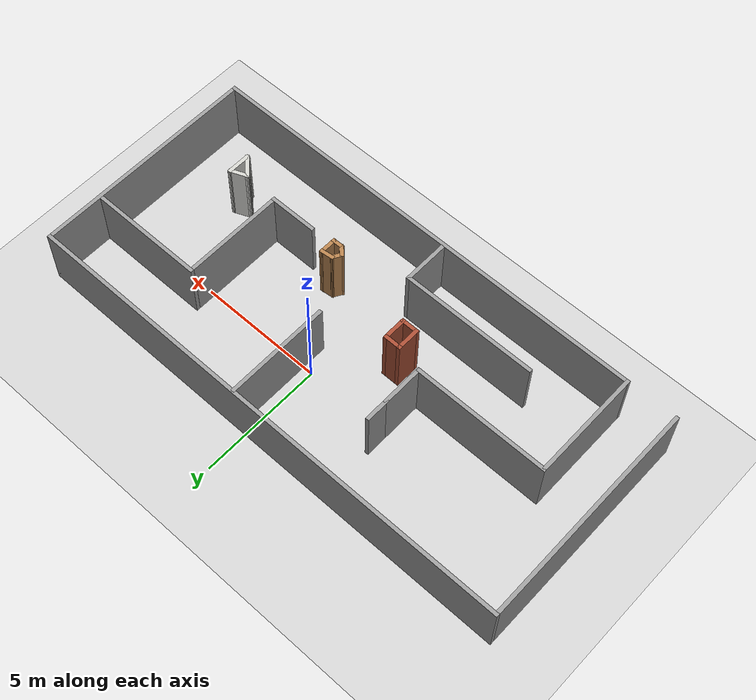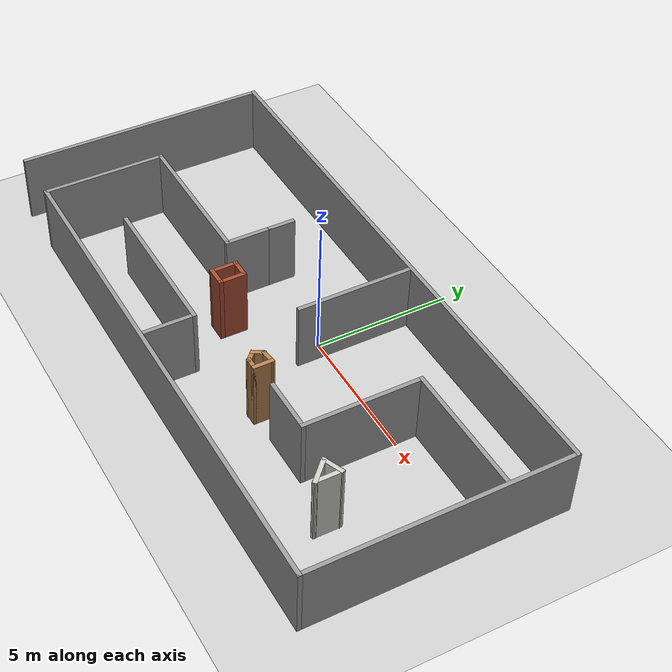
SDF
<sdf version="1.6">
 <world name="default">
  <plugin name="hello" filename="libhello.so"/>
  <light name="sun" type="directional">
   <pose>0 0 10 0 -0 0</pose>
   <diffuse>0.8 0.8 0.8 1</diffuse>
   <specular>0.2 0.2 0.2 1</specular>
   <attenuation>
    <range>1000</range>
    <constant>0.9</constant>
    <linear>0.01</linear>
    <quadratic>0.001</quadratic>
   </attenuation>
   <direction>-0.5 0.1 -0.9</direction>
  </light>
  <model name="ground_plane">
   <static>1</static>
   <link name="link">
    <collision name="collision">
     <geometry><plane><normal>0 0 1</normal><size>100 100</size></plane></geometry>
     <surface>
      <contact><collide_bitmask>65535</collide_bitmask></contact>
      <friction><ode><mu>100</mu><mu2>50</mu2></ode></friction>
     </surface>
    </collision>
    <visual name="visual">
     <cast_shadows>0</cast_shadows>
     <geometry><plane><normal>0 0 1</normal><size>100 100</size></plane></geometry>
     <material>
      <script><uri>file://media/materials/scripts/gazebo.material</uri><name>Gazebo/Grey</name></script>
     </material>
    </visual>
   </link>
  </model>
  <gravity>0 0 -9.8</gravity>
  <magnetic_field>6e-06 2.3e-05 -4.2e-05</magnetic_field>
  <atmosphere type="adiabatic"/>
  <physics name="default_physics" default="0" type="ode">
   <max_step_size>0.001</max_step_size>
   <real_time_factor>1</real_time_factor>
   <real_time_update_rate>1000</real_time_update_rate>
  </physics>
  <scene><ambient>0.4 0.4 0.4 1</ambient><background>0.7 0.7 0.7 1</background><shadows>1</shadows></scene>
  <audio><device>default</device></audio>
  <spherical_coordinates>
   <surface_model>EARTH_WGS84</surface_model>
   <latitude_deg>0</latitude_deg>
   <longitude_deg>0</longitude_deg>
   <elevation>0</elevation>
   <heading_deg>0</heading_deg>
  </spherical_coordinates>
  <model name="mybuilding">
   <pose>-0.67031 -1.36088 0 0 -0 0</pose>
   <link name="Wall_0">
    <collision name="Wall_0_Collision">
     <geometry><box><size>20.5 0.15 2.5</size></box></geometry>
     <pose>0 0 1.25 0 -0 0</pose>
    </collision>
    <visual name="Wall_0_Visual">
     <pose>0 0 1.25 0 -0 0</pose>
     <geometry><box><size>20.5 0.15 2.5</size></box></geometry>
     <material>
      <script><uri>file://media/materials/scripts/gazebo.material</uri><name>Gazebo/Grey</name></script>
      <ambient>1 1 1 1</ambient>
     </material>
     <meta><layer>0</layer></meta>
    </visual>
    <pose>-0 4.55 0 0 -0 0</pose>
   </link>
   <link name="Wall_1">
    <collision name="Wall_1_Collision">
     <geometry><box><size>9.25 0.15 2.5</size></box></geometry>
     <pose>0 0 1.25 0 -0 0</pose>
    </collision>
    <visual name="Wall_1_Visual">
     <pose>0 0 1.25 0 -0 0</pose>
     <geometry><box><size>9.25 0.15 2.5</size></box></geometry>
     <material>
      <script><uri>file://media/materials/scripts/gazebo.material</uri><name>Gazebo/Grey</name></script>
      <ambient>1 1 1 1</ambient>
     </material>
     <meta><layer>0</layer></meta>
    </visual>
    <pose>10.175 0 0 0 -0 -1.5708</pose>
   </link>
   <link name="Wall_11">
    <collision name="Wall_11_Collision">
     <geometry><box><size>4.75 0.15 2.5</size></box></geometry>
     <pose>0 0 1.25 0 -0 0</pose>
    </collision>
    <visual name="Wall_11_Visual">
     <pose>0 0 1.25 0 -0 0</pose>
     <geometry><box><size>4.75 0.15 2.5</size></box></geometry>
     <material>
      <script><uri>file://media/materials/scripts/gazebo.material</uri><name>Gazebo/Grey</name></script>
      <ambient>1 1 1 1</ambient>
     </material>
     <meta><layer>0</layer></meta>
    </visual>
    <pose>7.84755 2.18258 0 0 -0 3.14159</pose>
   </link>
   <link name="Wall_12">
    <collision name="Wall_12_Collision">
     <geometry><box><size>4.25 0.15 2.5</size></box></geometry>
     <pose>0 0 1.25 0 -0 0</pose>
    </collision>
    <visual name="Wall_12_Visual">
     <pose>0 0 1.25 0 -0 0</pose>
     <geometry><box><size>4.25 0.15 2.5</size></box></geometry>
     <material>
      <script><uri>file://media/materials/scripts/gazebo.material</uri><name>Gazebo/Grey</name></script>
      <ambient>1 1 1 1</ambient>
     </material>
     <meta><layer>0</layer></meta>
    </visual>
    <pose>5.54755 0.132582 0 0 -0 -1.5708</pose>
   </link>
   <link name="Wall_13">
    <collision name="Wall_13_Collision">
     <geometry><box><size>2 0.15 2.5</size></box></geometry>
     <pose>0 0 1.25 0 -0 0</pose>
    </collision>
    <visual name="Wall_13_Visual">
     <pose>0 0 1.25 0 -0 0</pose>
     <geometry><box><size>2 0.15 2.5</size></box></geometry>
     <material>
      <script><uri>file://media/materials/scripts/gazebo.material</uri><name>Gazebo/Grey</name></script>
      <ambient>1 1 1 1</ambient>
     </material>
     <meta><layer>0</layer></meta>
    </visual>
    <pose>4.62255 -1.91742 0 0 -0 3.14159</pose>
   </link>
   <link name="Wall_15">
    <collision name="Wall_15_Collision">
     <geometry><box><size>2 0.15 2.5</size></box></geometry>
     <pose>0 0 1.25 0 -0 0</pose>
    </collision>
    <visual name="Wall_15_Visual">
     <pose>0 0 1.25 0 -0 0</pose>
     <geometry><box><size>2 0.15 2.5</size></box></geometry>
     <material>
      <script><uri>file://media/materials/scripts/gazebo.material</uri><name>Gazebo/Grey</name></script>
      <ambient>1 1 1 1</ambient>
     </material>
     <meta><layer>0</layer></meta>
    </visual>
    <pose>-0.173325 -3.62227 0 0 -0 1.5708</pose>
   </link>
   <link name="Wall_16">
    <collision name="Wall_16_Collision">
     <geometry><box><size>5.5 0.15 2.5</size></box></geometry>
     <pose>0 0 1.25 0 -0 0</pose>
    </collision>
    <visual name="Wall_16_Visual">
     <pose>0 0 1.25 0 -0 0</pose>
     <geometry><box><size>5.5 0.15 2.5</size></box></geometry>
     <material>
      <script><uri>file://media/materials/scripts/gazebo.material</uri><name>Gazebo/Grey</name></script>
      <ambient>1 1 1 1</ambient>
     </material>
     <meta><layer>0</layer></meta>
    </visual>
    <pose>-2.84832 -2.69727 0 0 -0 3.14159</pose>
   </link>
   <link name="Wall_18">
    <collision name="Wall_18_Collision">
     <geometry><box><size>4.25 0.15 2.5</size></box></geometry>
     <pose>0 0 1.25 0 -0 0</pose>
    </collision>
    <visual name="Wall_18_Visual">
     <pose>0 0 1.25 0 -0 0</pose>
     <geometry><box><size>4.25 0.15 2.5</size></box></geometry>
     <material>
      <script><uri>file://media/materials/scripts/gazebo.material</uri><name>Gazebo/Grey</name></script>
      <ambient>1 1 1 1</ambient>
     </material>
     <meta><layer>0</layer></meta>
    </visual>
    <pose>1.13008 2.4468 0 0 -0 -1.5708</pose>
   </link>
   <link name="Wall_2">
    <collision name="Wall_2_Collision">
     <geometry><box><size>18.5 0.15 2.5</size></box></geometry>
     <pose>0 0 1.25 0 -0 0</pose>
    </collision>
    <visual name="Wall_2_Visual">
     <pose>0 0 1.25 0 -0 0</pose>
     <geometry><box><size>18.5 0.15 2.5</size></box></geometry>
     <material>
      <script><uri>file://media/materials/scripts/gazebo.material</uri><name>Gazebo/Grey</name></script>
      <ambient>1 1 1 1</ambient>
     </material>
     <meta><layer>0</layer></meta>
    </visual>
    <pose>1 -4.55 0 0 -0 3.14159</pose>
   </link>
   <link name="Wall_4">
    <collision name="Wall_4_Collision">
     <geometry><box><size>9.25 0.15 2.5</size></box></geometry>
     <pose>0 0 1.25 0 -0 0</pose>
    </collision>
    <visual name="Wall_4_Visual">
     <pose>0 0 1.25 0 -0 0</pose>
     <geometry><box><size>9.25 0.15 2.5</size></box></geometry>
     <material>
      <script><uri>file://media/materials/scripts/gazebo.material</uri><name>Gazebo/Grey</name></script>
      <ambient>1 1 1 1</ambient>
     </material>
     <meta><layer>0</layer></meta>
    </visual>
    <pose>-10.175 0 0 0 -0 -1.5708</pose>
   </link>
   <link name="Wall_6">
    <collision name="Wall_6_Collision">
     <geometry><box><size>4.5 0.15 2.5</size></box></geometry>
     <pose>0 0 1.25 0 -0 0</pose>
    </collision>
    <visual name="Wall_6_Visual">
     <pose>0 0 1.25 0 -0 0</pose>
     <geometry><box><size>4.5 0.15 2.5</size></box></geometry>
     <material>
      <script><uri>file://media/materials/scripts/gazebo.material</uri><name>Gazebo/Grey</name></script>
      <ambient>1 1 1 1</ambient>
     </material>
     <meta><layer>0</layer></meta>
    </visual>
    <pose>-8.175 -2.375 0 0 -0 1.5708</pose>
   </link>
   <link name="Wall_7">
    <collision name="Wall_7_Collision">
     <geometry><box><size>5.5 0.15 2.5</size></box></geometry>
     <pose>0 0 1.25 0 -0 0</pose>
    </collision>
    <visual name="Wall_7_Visual">
     <pose>0 0 1.25 0 -0 0</pose>
     <geometry><box><size>5.5 0.15 2.5</size></box></geometry>
     <material>
      <script><uri>file://media/materials/scripts/gazebo.material</uri><name>Gazebo/Grey</name></script>
      <ambient>1 1 1 1</ambient>
     </material>
     <meta><layer>0</layer></meta>
    </visual>
    <pose>-5.5 -0.2 0 0 -0 0</pose>
   </link>
   <link name="Wall_8">
    <collision name="Wall_8_Collision">
     <geometry><box><size>1.75 0.15 2.5</size></box></geometry>
     <pose>0 0 1.25 0 -0 0</pose>
    </collision>
    <visual name="Wall_8_Visual">
     <pose>0 0 1.25 0 -0 0</pose>
     <geometry><box><size>1.75 0.15 2.5</size></box></geometry>
     <material>
      <script><uri>file://media/materials/scripts/gazebo.material</uri><name>Gazebo/Grey</name></script>
      <ambient>1 1 1 1</ambient>
     </material>
     <meta><layer>0</layer></meta>
    </visual>
    <pose>-2.825 0.6 0 0 -0 1.5708</pose>
   </link>
   <link name="Wall_9">
    <collision name="Wall_9_Collision">
     <geometry><box><size>1 0.15 2.5</size></box></geometry>
     <pose>0 0 1.25 0 -0 0</pose>
    </collision>
    <visual name="Wall_9_Visual">
     <pose>0 0 1.25 0 -0 0</pose>
     <geometry><box><size>1 0.15 2.5</size></box></geometry>
     <material>
      <script><uri>file://media/materials/scripts/gazebo.material</uri><name>Gazebo/Grey</name></script>
      <ambient>1 1 1 1</ambient>
     </material>
     <meta><layer>0</layer></meta>
    </visual>
    <pose>-2.825 1.825 0 0 -0 1.5708</pose>
   </link>
   <static>1</static>
  </model>
  <model name="items">
   <pose>2.24553 -2.89053 0 0 -0 0</pose>
   <link name="Wall_0">
    <collision name="Wall_0_Collision">
     <geometry><box><size>1 0.15 2.5</size></box></geometry>
     <pose>0 0 1.25 0 -0 0</pose>
    </collision>
    <visual name="Wall_0_Visual">
     <pose>0 0 1.25 0 -0 0</pose>
     <geometry><box><size>1 0.15 2.5</size></box></geometry>
     <material>
      <script><uri>file://media/materials/scripts/gazebo.material</uri><name>Gazebo/Bricks</name></script>
      <ambient>1 1 1 1</ambient>
     </material>
     <meta><layer>0</layer></meta>
    </visual>
    <pose>-4.69553 0.685533 0 0 -0 1.5708</pose>
   </link>
   <link name="Wall_1">
    <collision name="Wall_1_Collision">
     <geometry><box><size>0.75 0.15 2.5</size></box></geometry>
     <pose>0 0 1.25 0 -0 0</pose>
    </collision>
    <visual name="Wall_1_Visual">
     <pose>0 0 1.25 0 -0 0</pose>
     <geometry><box><size>0.75 0.15 2.5</size></box></geometry>
     <material>
      <script><uri>file://media/materials/scripts/gazebo.material</uri><name>Gazebo/Bricks</name></script>
      <ambient>1 1 1 1</ambient>
     </material>
     <meta><layer>0</layer></meta>
    </visual>
    <pose>-4.39553 1.11053 0 0 -0 0</pose>
   </link>
   <link name="Wall_12">
    <collision name="Wall_12_Collision">
     <geometry><box><size>1 0.15 2.5</size></box></geometry>
     <pose>0 0 1.25 0 -0 0</pose>
    </collision>
    <visual name="Wall_12_Visual">
     <pose>0 0 1.25 0 -0 0</pose>
     <geometry><box><size>1 0.15 2.5</size></box></geometry>
     <material>
      <script><uri>file://media/materials/scripts/gazebo.material</uri><name>Gazebo/CeilingTiled</name></script>
      <ambient>1 1 1 1</ambient>
     </material>
     <meta><layer>0</layer></meta>
    </visual>
    <pose>4.66447 -0.654467 0 0 -0 -1.5708</pose>
   </link>
   <link name="Wall_13">
    <collision name="Wall_13_Collision">
     <geometry><box><size>1 0.15 2.5</size></box></geometry>
     <pose>0 0 1.25 0 -0 0</pose>
    </collision>
    <visual name="Wall_13_Visual">
     <pose>0 0 1.25 0 -0 0</pose>
     <geometry><box><size>1 0.15 2.5</size></box></geometry>
     <material>
      <script><uri>file://media/materials/scripts/gazebo.material</uri><name>Gazebo/CeilingTiled</name></script>
      <ambient>1 1 1 1</ambient>
     </material>
     <meta><layer>0</layer></meta>
    </visual>
    <pose>4.36395 -0.778947 0 0 -0 2.35619</pose>
   </link>
   <link name="Wall_14">
    <collision name="Wall_14_Collision">
     <geometry><box><size>0.800562 0.15 2.5</size></box></geometry>
     <pose>0 0 1.25 0 -0 0</pose>
    </collision>
    <visual name="Wall_14_Visual">
     <pose>0 0 1.25 0 -0 0</pose>
     <geometry><box><size>0.800562 0.15 2.5</size></box></geometry>
     <material>
      <script><uri>file://media/materials/scripts/gazebo.material</uri><name>Gazebo/CeilingTiled</name></script>
      <ambient>1 1 1 1</ambient>
     </material>
     <meta><layer>0</layer></meta>
    </visual>
    <pose>4.36395 -0.353947 0 0 -0 0.392699</pose>
   </link>
   <link name="Wall_2">
    <collision name="Wall_2_Collision">
     <geometry><box><size>1 0.15 2.5</size></box></geometry>
     <pose>0 0 1.25 0 -0 0</pose>
    </collision>
    <visual name="Wall_2_Visual">
     <pose>0 0 1.25 0 -0 0</pose>
     <geometry><box><size>1 0.15 2.5</size></box></geometry>
     <material>
      <script><uri>file://media/materials/scripts/gazebo.material</uri><name>Gazebo/Bricks</name></script>
      <ambient>1 1 1 1</ambient>
     </material>
     <meta><layer>0</layer></meta>
    </visual>
    <pose>-4.09553 0.685533 0 0 -0 -1.5708</pose>
   </link>
   <link name="Wall_3">
    <collision name="Wall_3_Collision">
     <geometry><box><size>0.75 0.15 2.5</size></box></geometry>
     <pose>0 0 1.25 0 -0 0</pose>
    </collision>
    <visual name="Wall_3_Visual">
     <pose>0 0 1.25 0 -0 0</pose>
     <geometry><box><size>0.75 0.15 2.5</size></box></geometry>
     <material>
      <script><uri>file://media/materials/scripts/gazebo.material</uri><name>Gazebo/Bricks</name></script>
      <ambient>1 1 1 1</ambient>
     </material>
     <meta><layer>0</layer></meta>
    </visual>
    <pose>-4.39553 0.260533 0 0 -0 3.14159</pose>
   </link>
   <link name="Wall_5">
    <collision name="Wall_5_Collision">
     <geometry><box><size>0.75 0.15 2.5</size></box></geometry>
     <pose>0 0 1.25 0 -0 0</pose>
    </collision>
    <visual name="Wall_5_Visual">
     <pose>0 0 1.25 0 -0 0</pose>
     <geometry><box><size>0.75 0.15 2.5</size></box></geometry>
     <material>
      <script><uri>file://media/materials/scripts/gazebo.material</uri><name>Gazebo/Wood</name></script>
      <ambient>1 1 1 1</ambient>
     </material>
     <meta><layer>0</layer></meta>
    </visual>
    <pose>-0.145533 -0.239467 0 0 -0 -1.5708</pose>
   </link>
   <link name="Wall_6">
    <collision name="Wall_6_Collision">
     <geometry><box><size>0.5 0.15 2.5</size></box></geometry>
     <pose>0 0 1.25 0 -0 0</pose>
    </collision>
    <visual name="Wall_6_Visual">
     <pose>0 0 1.25 0 -0 0</pose>
     <geometry><box><size>0.5 0.15 2.5</size></box></geometry>
     <material>
      <script><uri>file://media/materials/scripts/gazebo.material</uri><name>Gazebo/Wood</name></script>
      <ambient>1 1 1 1</ambient>
     </material>
     <meta><layer>0</layer></meta>
    </visual>
    <pose>-0.320533 -0.539467 0 0 -0 3.14159</pose>
   </link>
   <link name="Wall_7">
    <collision name="Wall_7_Collision">
     <geometry><box><size>0.5 0.15 2.5</size></box></geometry>
     <pose>0 0 1.25 0 -0 0</pose>
    </collision>
    <visual name="Wall_7_Visual">
     <pose>0 0 1.25 0 -0 0</pose>
     <geometry><box><size>0.5 0.15 2.5</size></box></geometry>
     <material>
      <script><uri>file://media/materials/scripts/gazebo.material</uri><name>Gazebo/Wood</name></script>
      <ambient>1 1 1 1</ambient>
     </material>
     <meta><layer>0</layer></meta>
    </visual>
    <pose>-0.619277 -0.415723 0 0 -0 2.35619</pose>
   </link>
   <link name="Wall_8">
    <collision name="Wall_8_Collision">
     <geometry><box><size>0.5 0.15 2.5</size></box></geometry>
     <pose>0 0 1.25 0 -0 0</pose>
    </collision>
    <visual name="Wall_8_Visual">
     <pose>0 0 1.25 0 -0 0</pose>
     <geometry><box><size>0.5 0.15 2.5</size></box></geometry>
     <material>
      <script><uri>file://media/materials/scripts/gazebo.material</uri><name>Gazebo/Wood</name></script>
      <ambient>1 1 1 1</ambient>
     </material>
     <meta><layer>0</layer></meta>
    </visual>
    <pose>-0.65552 -0.140425 0 0 -0 1.0472</pose>
   </link>
   <link name="Wall_9">
    <collision name="Wall_9_Collision">
     <geometry><box><size>0.575366 0.15 2.5</size></box></geometry>
     <pose>0 0 1.25 0 -0 0</pose>
    </collision>
    <visual name="Wall_9_Visual">
     <pose>0 0 1.25 0 -0 0</pose>
     <geometry><box><size>0.575366 0.15 2.5</size></box></geometry>
     <material>
      <script><uri>file://media/materials/scripts/gazebo.material</uri><name>Gazebo/Wood</name></script>
      <ambient>1 1 1 1</ambient>
     </material>
     <meta><layer>0</layer></meta>
    </visual>
    <pose>-0.356777 0.035831 0 0 -0 0.116407</pose>
   </link>
   <static>1</static>
  </model>
 </world>
</sdf>
